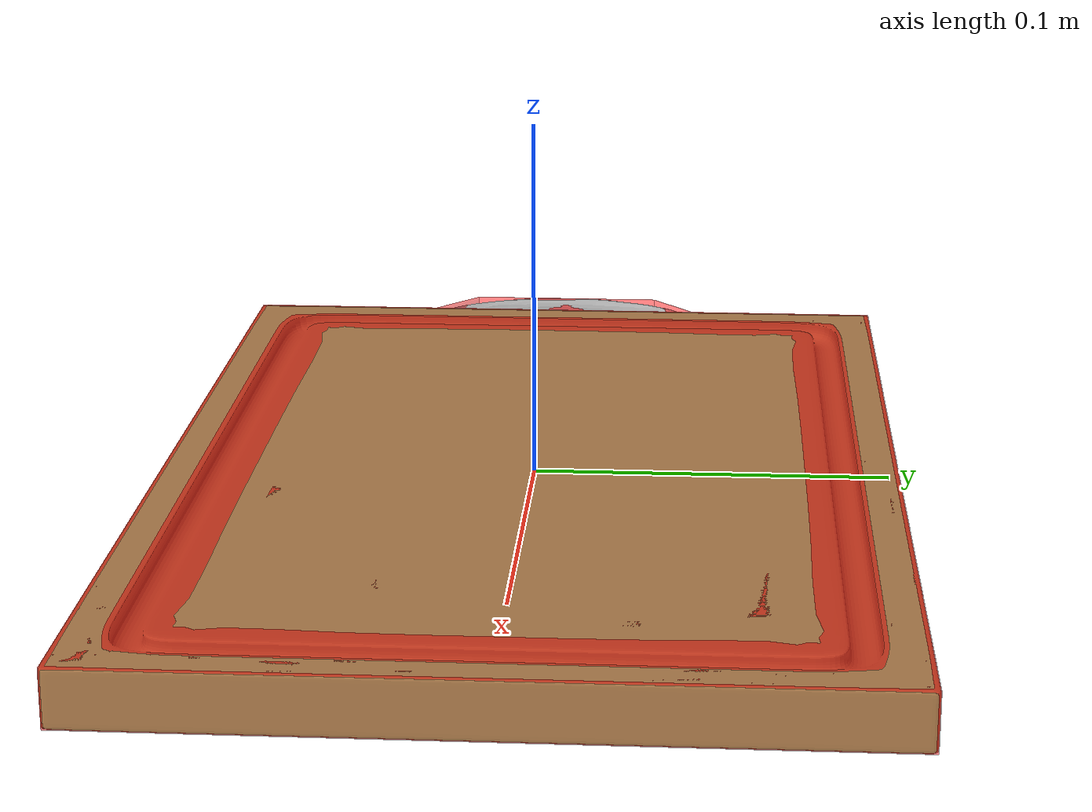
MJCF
<?xml version="1.0" ?>
<mujoco model="cutting_board">
	<compiler meshdir="cutting_board/meshes" texturedir="cutting_board/textures" angle="radian" autolimits="true" balanceinertia="true" boundmass="0.000001" boundinertia="0.000001" inertiafromgeom="true"/>
	<default>
		<default class="cutting_board_visual">
			<geom contype="0" conaffinity="0"/>
		</default>
		<default class="cutting_board_collision">
			<geom rgba="1.0 0.0 0.0 0.5"/>
		</default>
	</default>
	<asset>
		<mesh name="CuttingBoardMetal" file="stl/CuttingBoardMetal.stl" scale="1.0 1.0 1.0"/>
		<mesh name="CuttingBoardWoodiness" file="obj/CuttingBoardWoodiness.obj" scale="1.0 1.0 1.0"/>
		<material name="M_CuttingBoardMetal" rgba="0.660099983215332 0.660099983215332 0.660099983215332 1.0" emission="0.0"/>
		<material name="M_CuttingBoardWoodiness" texture="T_CuttingBoardWoodiness"/>
		<texture name="T_CuttingBoardWoodiness" type="2d" file="T_CuttingBoardWoodiness.png"/>

		<mesh name="UCX_CuttingBoard_001" file="stl/UCX_CuttingBoard_001.stl" scale="1.0 1.0 1.0"/>
		<mesh name="UCX_CuttingBoard_002" file="stl/UCX_CuttingBoard_002.stl" scale="1.0 1.0 1.0"/>
		<mesh name="UCX_CuttingBoard_003" file="stl/UCX_CuttingBoard_003.stl" scale="1.0 1.0 1.0"/>
		<mesh name="UCX_CuttingBoard_004" file="stl/UCX_CuttingBoard_004.stl" scale="1.0 1.0 1.0"/>
	</asset>
	<worldbody>
		<body name="cutting_board" pos="0.0 0.0 0.0" quat="1.0 0.0 0.0 0.0">
			<geom name="UCX_CuttingBoard_001" type="mesh" mesh="UCX_CuttingBoard_001" class="cutting_board_collision"/>
			<geom name="UCX_CuttingBoard_002" type="mesh" mesh="UCX_CuttingBoard_002" class="cutting_board_collision"/>
			<geom name="UCX_CuttingBoard_003" type="mesh" mesh="UCX_CuttingBoard_003" class="cutting_board_collision"/>
			<geom name="UCX_CuttingBoard_004" type="mesh" mesh="UCX_CuttingBoard_004" class="cutting_board_collision"/>
			<body name="cutting_board_metal" pos="0.0 0.0 0.0" quat="1.0 0.0 0.0 0.0">
				<inertial mass="0.003382503753527999" pos="-0.1557769477367401 -1.598478576170237e-07 -0.00022137862106319517" quat="0.9999997615814209 -3.373483892232798e-08 -0.0007113958126865327 4.838778977500624e-07" diaginertia="2.3344916826317785e-06 8.222460746765137e-05 8.449548477074131e-05"/>
				<geom name="CuttingBoardMetal" type="mesh" pos="0.0 0.0 0.0" quat="1.0 0.0 0.0 0.0" mesh="CuttingBoardMetal" material="M_CuttingBoardMetal" class="cutting_board_visual"/>
			</body>
			<body name="cutting_board_woodiness" pos="0.0 0.0 0.0" quat="1.0 0.0 0.0 0.0">
				<inertial mass="0.6391174793243408" pos="0.010726099833846092 3.602701497129601e-07 -0.0001807895750971511" quat="1.0 4.0685338831281115e-07 0.00012549333041533828 -6.470136071357047e-08" diaginertia="0.002166003454476595 0.004960523918271065 0.007102298550307751"/>
				<geom name="CuttingBoardWoodiness" type="mesh" pos="0.0 0.0 0.0" quat="1.0 0.0 0.0 0.0" mesh="CuttingBoardWoodiness" material="M_CuttingBoardWoodiness" class="cutting_board_visual"/>
			</body>
		</body>
	</worldbody>
	<equality/>
</mujoco>
